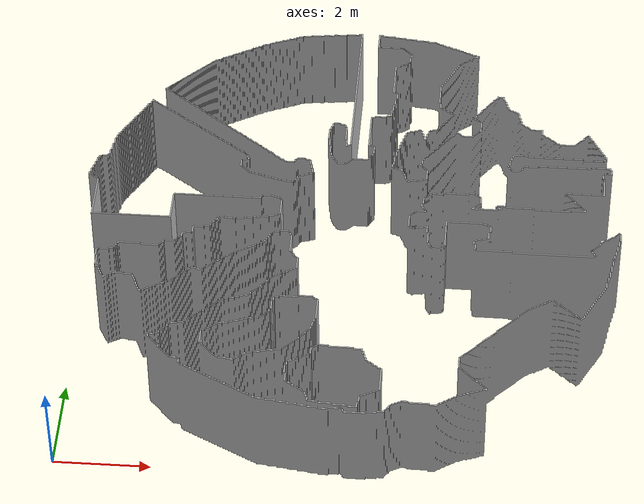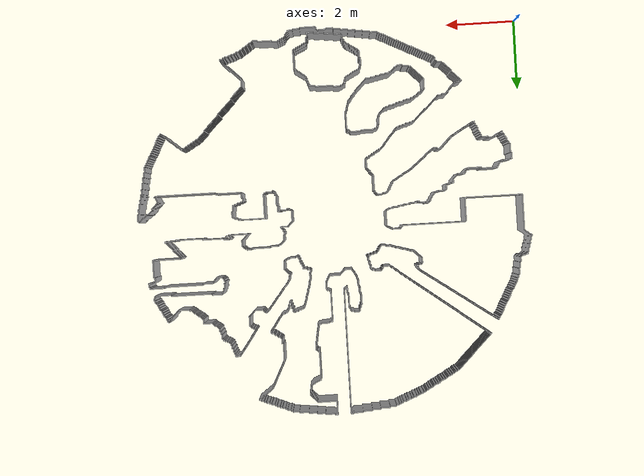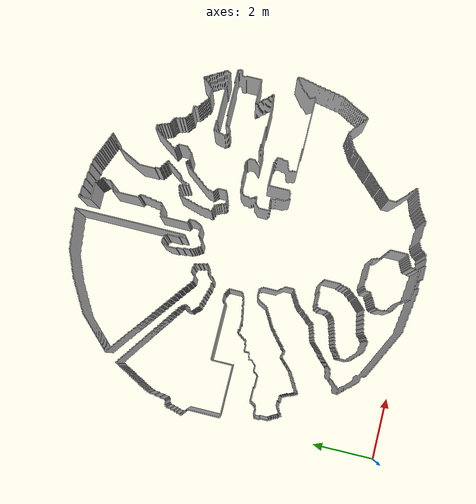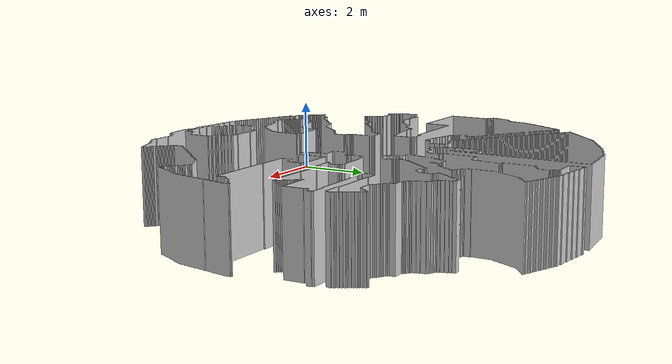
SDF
<?xml version="1.0" ?>
<sdf version="1.4">
  <model name="habitat24">
    <link name="link">
      <inertial>
        <mass>15</mass>
        <inertia>
          <ixx>0.145833</ixx>
          <ixy>0.0</ixy>
          <ixz>0.0</ixz>
          <iyy>0.145833</iyy>
          <iyz>0.0</iyz>
          <izz>0.0</izz>
        </inertia>
      </inertial>
      <collision name="collision">
        <pose>0 0 0 0 0 0</pose>
        <geometry>
          <mesh>
            <uri>model://habitat24/meshes/habitat24.stl</uri>
          </mesh>
        </geometry>
        <max_contacts>10</max_contacts>
        <surface>
            <contact>
              <ode/>
            </contact>
            <bounce/>
            <friction>
              <torsional>
                <ode/>
              </torsional>
              <ode/>
            </friction>
        </surface>
      </collision>
      <visual name="visual">
        <pose>0 0 0 0 0 0</pose>
        <geometry>
          <mesh>
            <uri>model://habitat24/meshes/habitat24.stl</uri>
          </mesh>
        </geometry>
      </visual>
      <self_collide>0</self_collide>
      <kinematic>0</kinematic>
      <gravity>1</gravity>
    </link>
    <static>1</static>
  </model>
</sdf>
